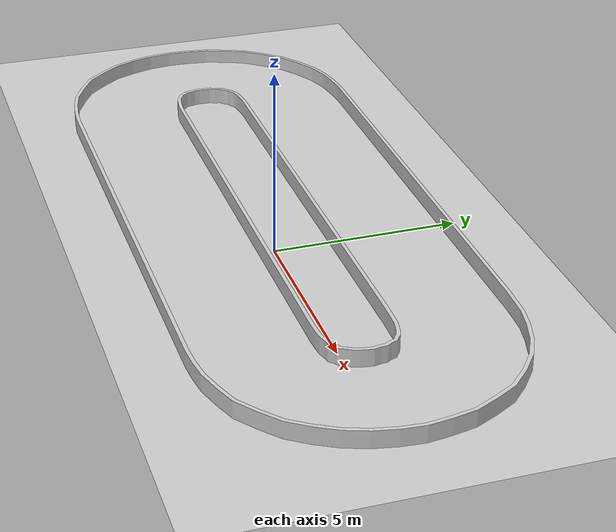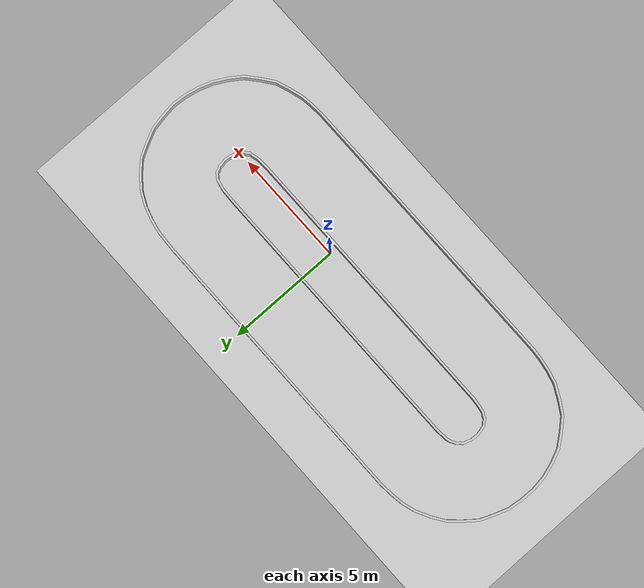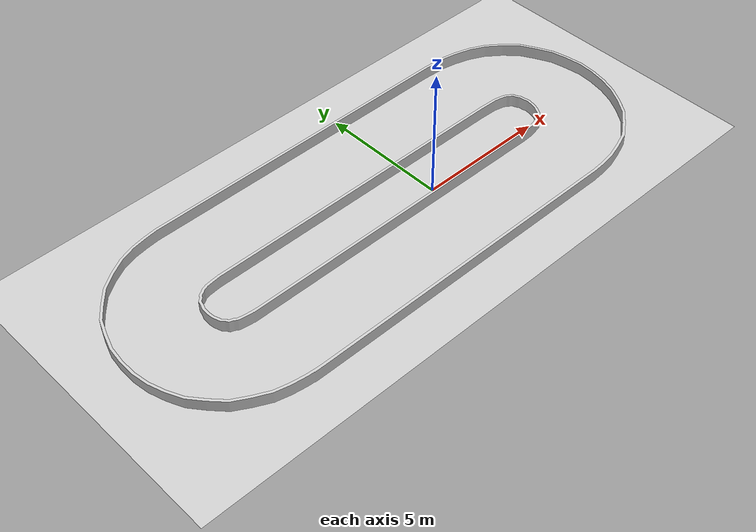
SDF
<?xml version="1.0"?>
<sdf version="1.4">
<world name="test_track">
  <gui>
    <camera name="camera">
      <pose>-1.02 3.05 17.48 0.00 1.57 0.00</pose>
    </camera>
  </gui>

  <scene>
    <ambient>0.5 0.5 0.5 1.0</ambient>
    <shadows>0</shadows>
  </scene>

  <include>
    <uri>model://sun</uri>
    <pose>0.0 0.0 15.0 0 0 0</pose>
    <cast_shadows>false</cast_shadows>
    <attenuation>
      <constant>0.5</constant>
      <linear>0.01</linear>
      <quadratic>0.0</quadratic>
      <range>100</range>
    </attenuation>
  </include>

  <light type="point" name="Light 1">
              <pose>0 0 15 0 0 0</pose>
              <diffuse>.9 .9 .9 1</diffuse>
              <specular>.1 .1 .1 1</specular>
              <attenuation>
              <constant>0.5</constant>
              <linear>0.01</linear>
              <quadratic>0.0</quadratic>
              <range>50</range>
              </attenuation>
              <direction>0 0 -1</direction>
              <cast_shadows>false</cast_shadows>
          </light>

  <model name="ground_plane">
    <static>true</static>
    <link name="link">
      <collision name="collision">
        <geometry>
          <plane>
            <normal>0 0 1</normal>
            <size>150 150</size>
          </plane>
        </geometry>
        <surface>
          <friction>
            <ode>
              <mu>100</mu>
              <mu2>50</mu2>
            </ode>
          </friction>
        </surface>
      </collision>
      <visual name="visual">
        <cast_shadows>false</cast_shadows>
        <geometry>
          <plane>
            <normal>0 0 1</normal>
            <size>150 150</size>
          </plane>
        </geometry>
        <material>
          <script>
            <uri>file://media/materials/scripts/gazebo.material</uri>
            <name>Gazebo/Grey</name>
          </script>
        </material>
      </visual>
    </link>
  </model>

  <include>
    <uri>model://test_track</uri>
    <pose>-1.3 0 -.1 0 0 0</pose>
    <name>test_track</name>
  </include>

</world>
</sdf>

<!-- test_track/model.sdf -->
<sdf version='1.4'>
  <model name="test_track">
    <link name="link">
      <collision name="collision">
        <geometry>
          <mesh>
            <uri>model://test_track.dae</uri>
          </mesh>
        </geometry>
      </collision>
      <visual name="visual">
        <geometry>
          <mesh>
            <uri>model://test_track.dae</uri>
          </mesh>
        </geometry>
      </visual>
    </link>
    <static>1</static>
  </model>
</sdf>
